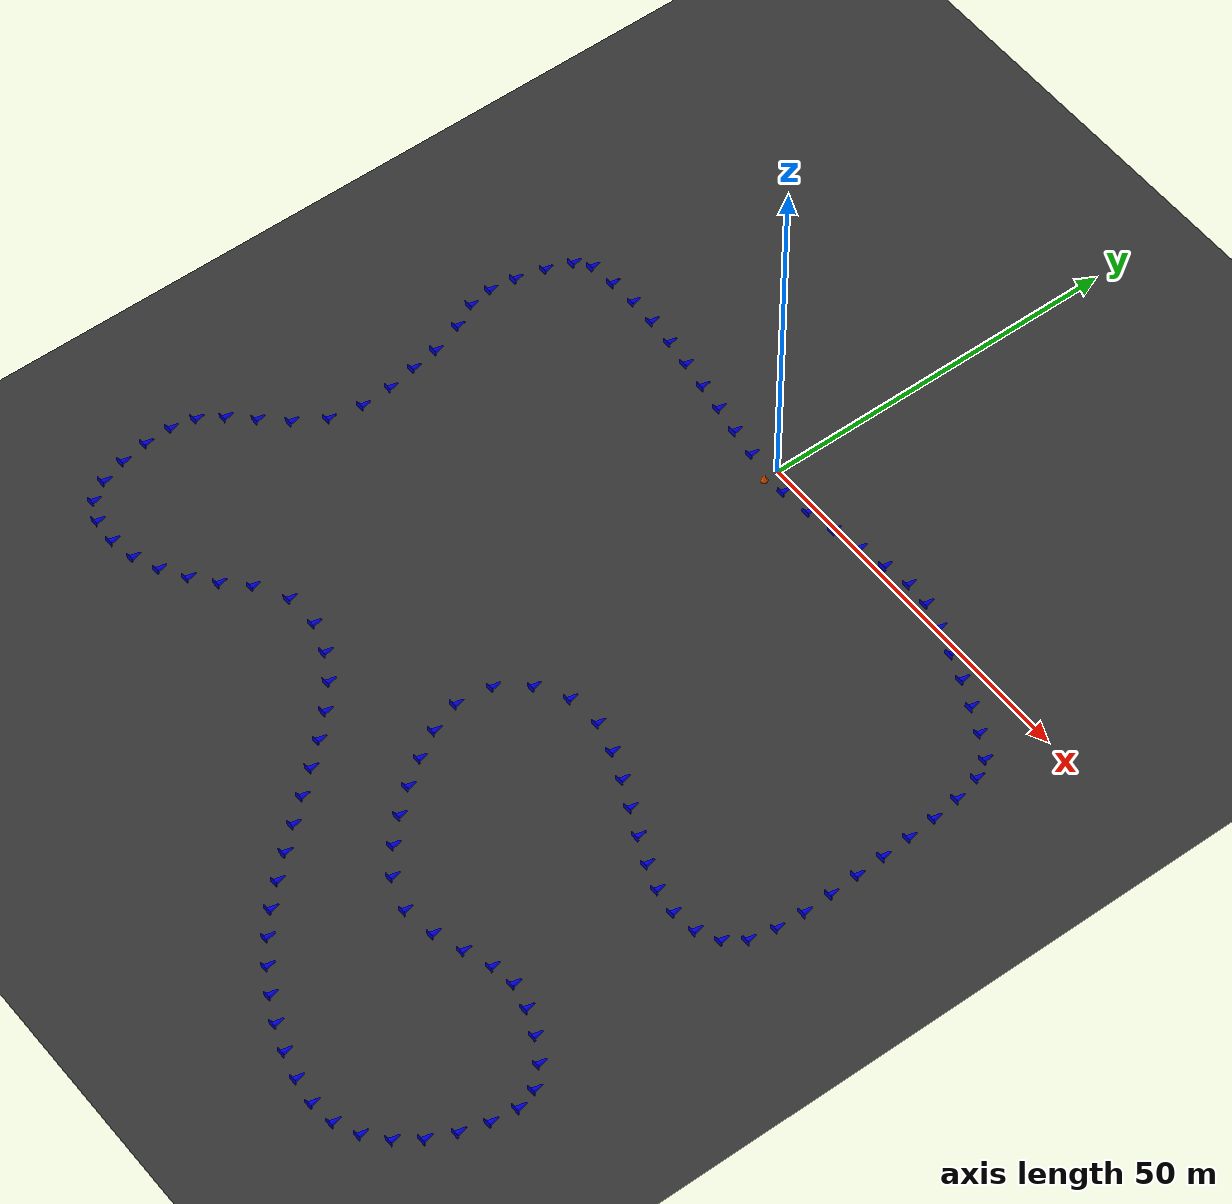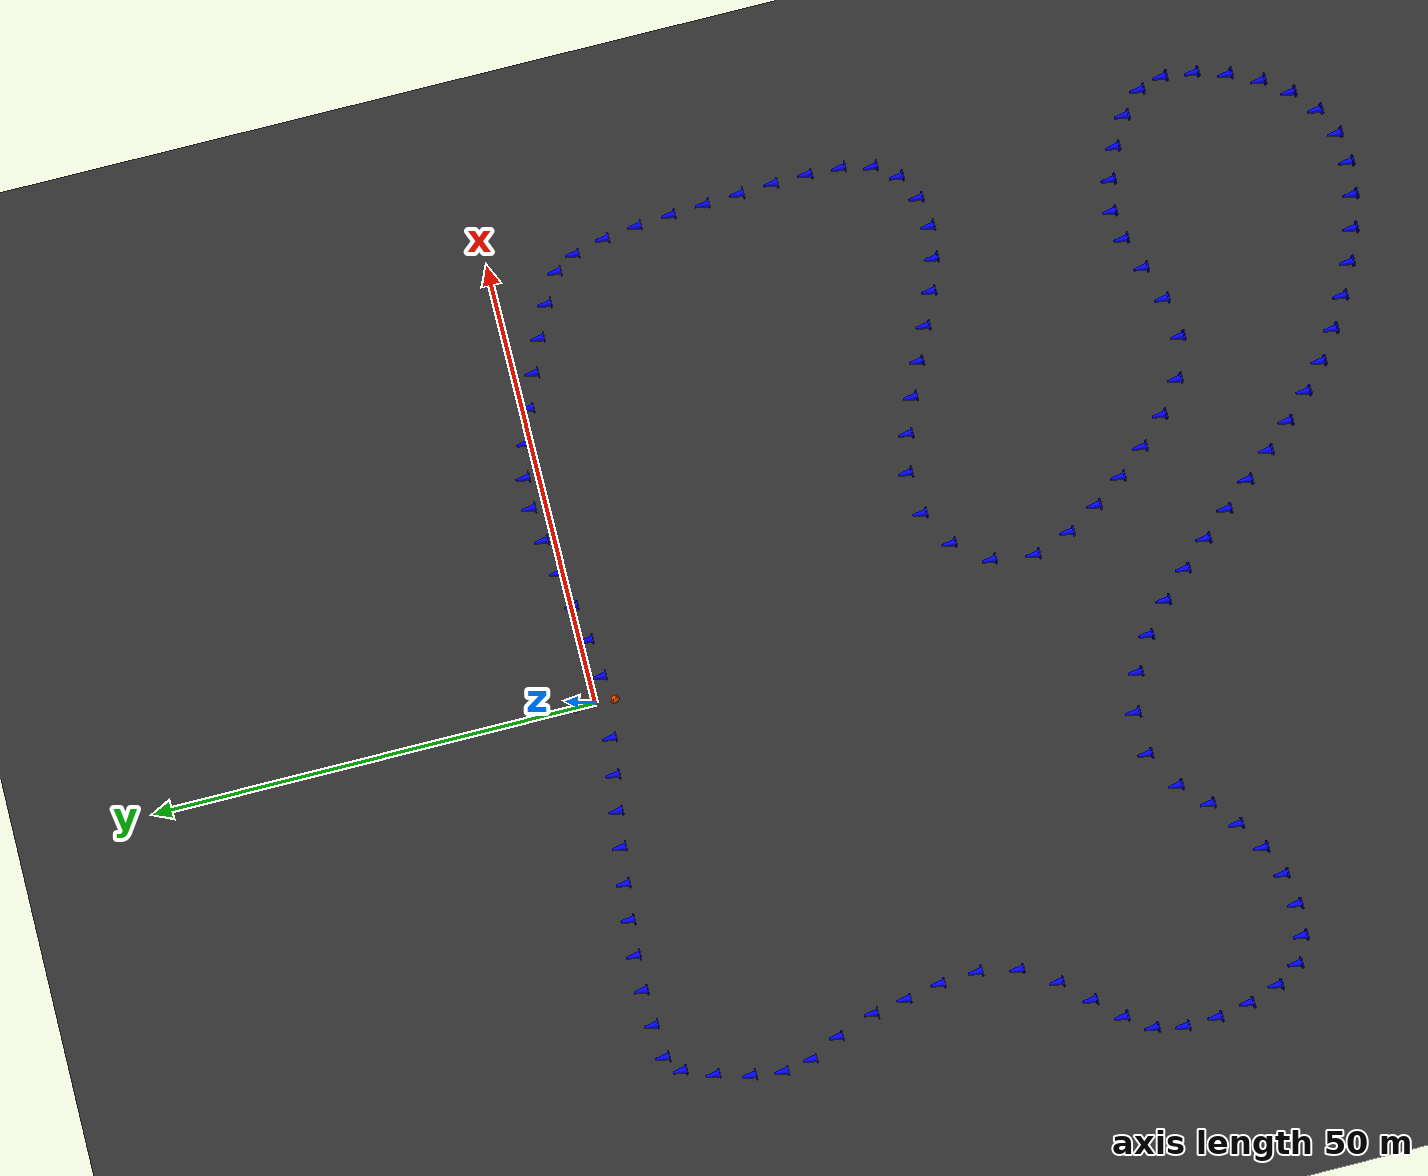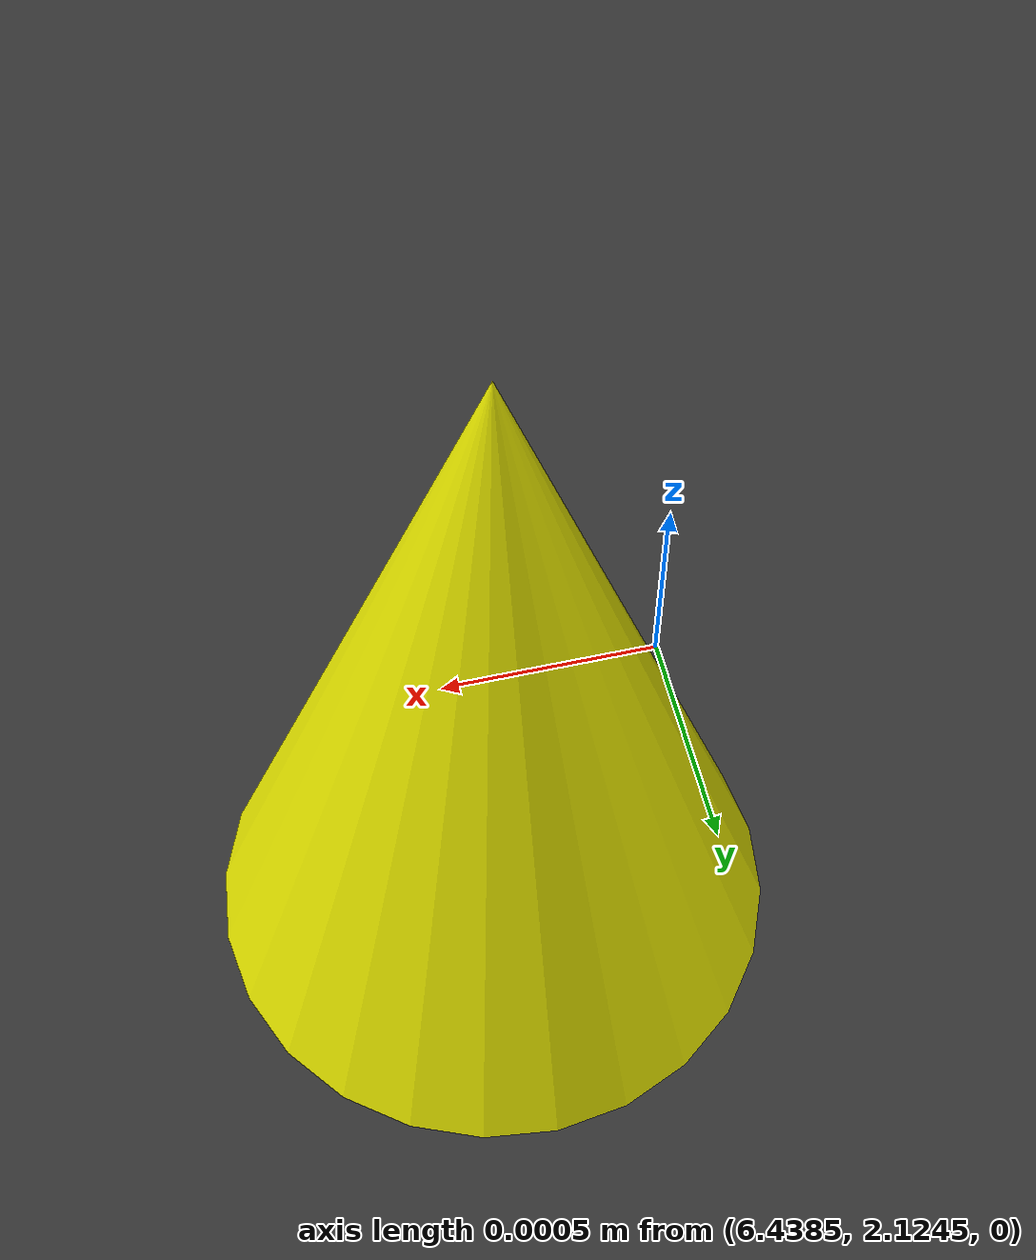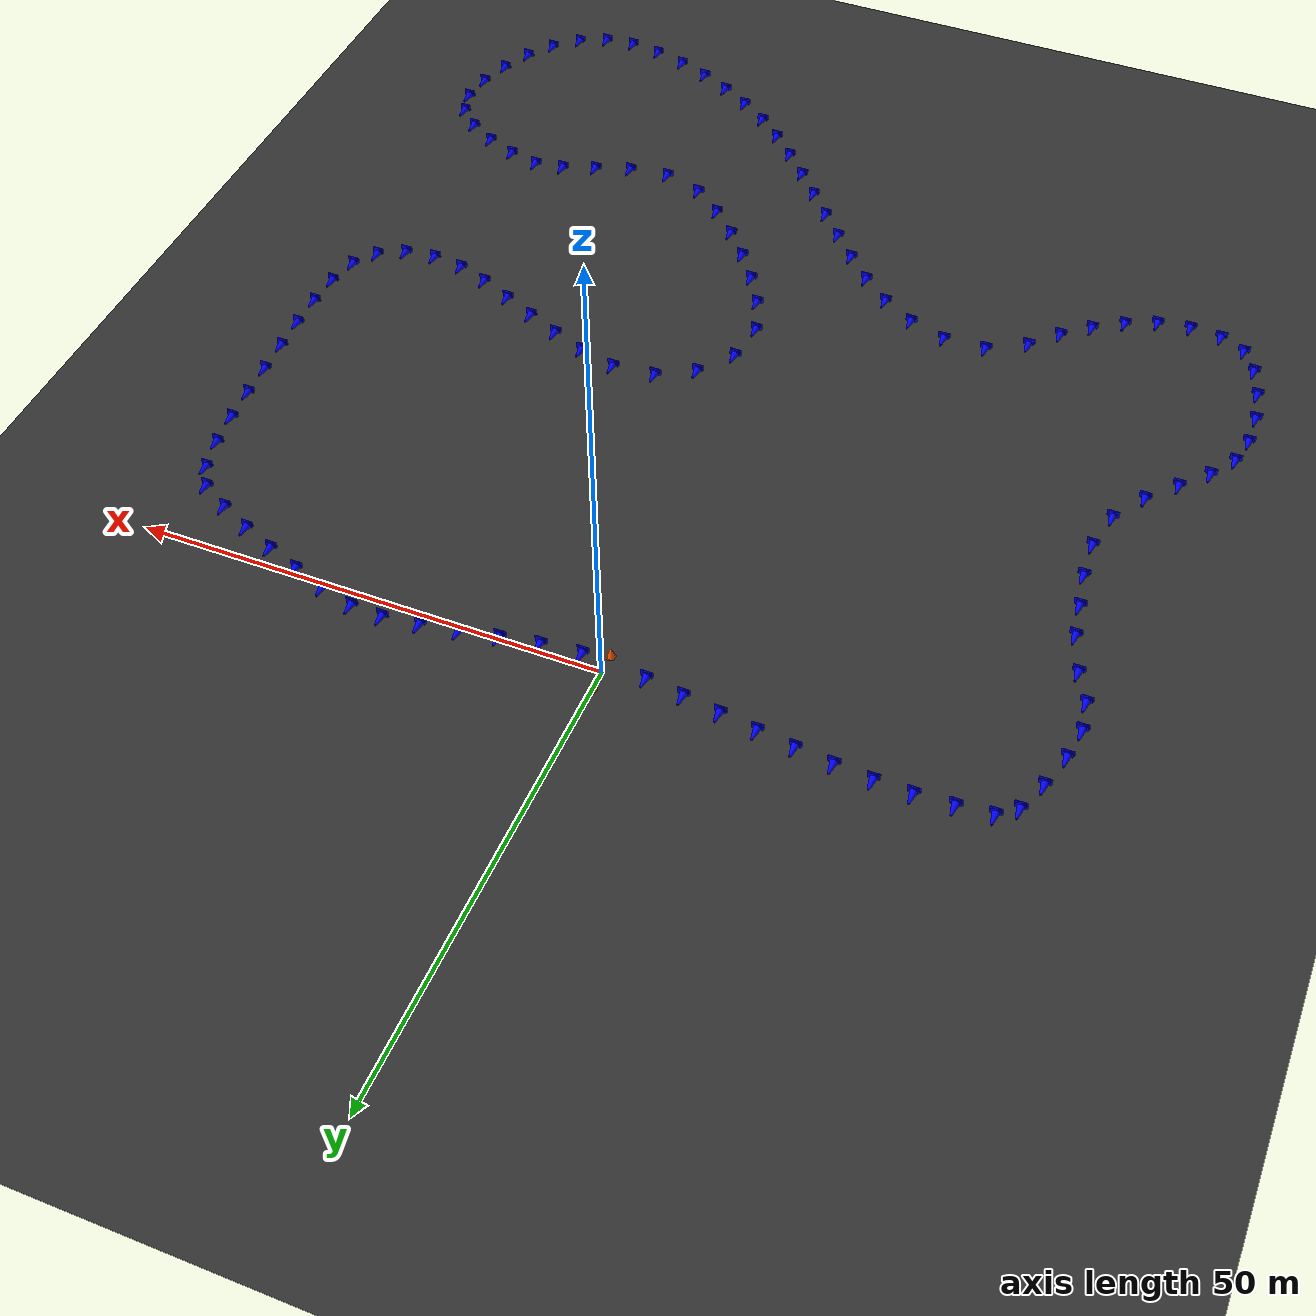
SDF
<sdf version="1.7">
 <world name="generated_world">
  <scene><sky><clouds><speed>12</speed></clouds></sky><grid>false</grid><shadows>1</shadows></scene>
  <physics type="ode">
   <max_step_size>0.001</max_step_size>
   <real_time_update_rate>1000</real_time_update_rate>
  </physics>
  <plugin filename="gz-sim-physics-system" name="gz::sim::systems::Physics"/>
  <plugin filename="gz-sim-user-commands-system" name="gz::sim::systems::UserCommands"/>
  <plugin filename="gz-sim-scene-broadcaster-system" name="gz::sim::systems::SceneBroadcaster"/>
  <plugin filename="gz-sim-contact-system" name="gz::sim::systems::Contact"/>
  <light name="sun" type="directional">
   <pose>0 0 10 0 0 0</pose>
   <diffuse>1 1 1 1</diffuse>
   <specular>0.2 0.2 0.2 1</specular>
   <direction>-0.5 0.2 -1</direction>
   <attenuation>
    <range>300</range>
    <constant>0.9</constant>
    <linear>0.01</linear>
    <quadratic>0.001</quadratic>
   </attenuation>
  </light>
  <model name="asphalt_ground">
   <static>1</static>
   <link name="link">
    <collision name="collision">
     <geometry><plane><normal>0 0 1</normal><size>300 300</size></plane></geometry>
     <surface><friction><ode><mu>100</mu><mu2>50</mu2></ode></friction></surface>
    </collision>
    <visual name="visual">
     <geometry><plane><normal>0 0 1</normal><size>300 300</size></plane></geometry>
     <material>
      <ambient>0.2 0.2 0.2 1</ambient>
      <diffuse>0.2 0.2 0.2 1</diffuse>
      <specular>0.1 0.1 0.1 1</specular>
     </material>
    </visual>
   </link>
  </model>
  <include><uri>model://cone_yellow</uri><name>cone_yellow_001</name><pose>2.761 1.724 0 0 0 0</pose></include>
  <include><uri>model://cone_yellow</uri><name>cone_yellow_002</name><pose>6.439 2.125 0 0 0 0</pose></include>
  <include><uri>model://cone_yellow</uri><name>cone_yellow_003</name><pose>10.350 2.819 0 0 0 0</pose></include>
  <include><uri>model://cone_yellow</uri><name>cone_yellow_004</name><pose>14.287 3.567 0 0 0 0</pose></include>
  <include><uri>model://cone_yellow</uri><name>cone_yellow_005</name><pose>18.274 4.277 0 0 0 0</pose></include>
  <include><uri>model://cone_yellow</uri><name>cone_yellow_006</name><pose>22.369 4.815 0 0 0 0</pose></include>
  <include><uri>model://cone_yellow</uri><name>cone_yellow_007</name><pose>26.805 4.576 0 0 0 0</pose></include>
  <include><uri>model://cone_yellow</uri><name>cone_yellow_008</name><pose>30.833 3.493 0 0 0 0</pose></include>
  <include><uri>model://cone_yellow</uri><name>cone_yellow_009</name><pose>34.731 2.151 0 0 0 0</pose></include>
  <include><uri>model://cone_yellow</uri><name>cone_yellow_010</name><pose>38.523 0.668 0 0 0 0</pose></include>
  <include>
   <uri>model://cone_yellow</uri>
   <name>cone_yellow_011</name>
   <pose>42.275 -0.953 0 0 0 0</pose>
  </include>
  <include>
   <uri>model://cone_yellow</uri>
   <name>cone_yellow_012</name>
   <pose>45.959 -2.729 0 0 0 0</pose>
  </include>
  <include>
   <uri>model://cone_yellow</uri>
   <name>cone_yellow_013</name>
   <pose>49.678 -4.934 0 0 0 0</pose>
  </include>
  <include>
   <uri>model://cone_yellow</uri>
   <name>cone_yellow_014</name>
   <pose>52.344 -9.016 0 0 0 0</pose>
  </include>
  <include>
   <uri>model://cone_yellow</uri>
   <name>cone_yellow_015</name>
   <pose>53.341 -13.198 0 0 0 0</pose>
  </include>
  <include>
   <uri>model://cone_yellow</uri>
   <name>cone_yellow_016</name>
   <pose>53.864 -17.280 0 0 0 0</pose>
  </include>
  <include>
   <uri>model://cone_yellow</uri>
   <name>cone_yellow_017</name>
   <pose>54.179 -21.344 0 0 0 0</pose>
  </include>
  <include>
   <uri>model://cone_yellow</uri>
   <name>cone_yellow_018</name>
   <pose>54.396 -25.365 0 0 0 0</pose>
  </include>
  <include>
   <uri>model://cone_yellow</uri>
   <name>cone_yellow_019</name>
   <pose>54.614 -29.320 0 0 0 0</pose>
  </include>
  <include>
   <uri>model://cone_yellow</uri>
   <name>cone_yellow_020</name>
   <pose>54.828 -33.353 0 0 0 0</pose>
  </include>
  <include>
   <uri>model://cone_yellow</uri>
   <name>cone_yellow_021</name>
   <pose>54.910 -37.448 0 0 0 0</pose>
  </include>
  <include>
   <uri>model://cone_yellow</uri>
   <name>cone_yellow_022</name>
   <pose>54.686 -41.629 0 0 0 0</pose>
  </include>
  <include>
   <uri>model://cone_yellow</uri>
   <name>cone_yellow_023</name>
   <pose>53.737 -45.947 0 0 0 0</pose>
  </include>
  <include>
   <uri>model://cone_yellow</uri>
   <name>cone_yellow_024</name>
   <pose>50.979 -49.879 0 0 0 0</pose>
  </include>
  <include>
   <uri>model://cone_yellow</uri>
   <name>cone_yellow_025</name>
   <pose>46.858 -52.119 0 0 0 0</pose>
  </include>
  <include>
   <uri>model://cone_yellow</uri>
   <name>cone_yellow_026</name>
   <pose>42.374 -52.721 0 0 0 0</pose>
  </include>
  <include>
   <uri>model://cone_yellow</uri>
   <name>cone_yellow_027</name>
   <pose>38.035 -52.152 0 0 0 0</pose>
  </include>
  <include>
   <uri>model://cone_yellow</uri>
   <name>cone_yellow_028</name>
   <pose>34.024 -50.797 0 0 0 0</pose>
  </include>
  <include>
   <uri>model://cone_yellow</uri>
   <name>cone_yellow_029</name>
   <pose>30.273 -49.147 0 0 0 0</pose>
  </include>
  <include>
   <uri>model://cone_yellow</uri>
   <name>cone_yellow_030</name>
   <pose>26.629 -47.468 0 0 0 0</pose>
  </include>
  <include>
   <uri>model://cone_yellow</uri>
   <name>cone_yellow_031</name>
   <pose>23.004 -45.858 0 0 0 0</pose>
  </include>
  <include>
   <uri>model://cone_yellow</uri>
   <name>cone_yellow_032</name>
   <pose>19.394 -44.447 0 0 0 0</pose>
  </include>
  <include>
   <uri>model://cone_yellow</uri>
   <name>cone_yellow_033</name>
   <pose>15.803 -43.485 0 0 0 0</pose>
  </include>
  <include>
   <uri>model://cone_yellow</uri>
   <name>cone_yellow_034</name>
   <pose>12.773 -43.779 0 0 0 0</pose>
  </include>
  <include>
   <uri>model://cone_yellow</uri>
   <name>cone_yellow_035</name>
   <pose>9.872 -45.436 0 0 0 0</pose>
  </include>
  <include>
   <uri>model://cone_yellow</uri>
   <name>cone_yellow_036</name>
   <pose>7.984 -47.963 0 0 0 0</pose>
  </include>
  <include>
   <uri>model://cone_yellow</uri>
   <name>cone_yellow_037</name>
   <pose>7.605 -50.944 0 0 0 0</pose>
  </include>
  <include>
   <uri>model://cone_yellow</uri>
   <name>cone_yellow_038</name>
   <pose>8.769 -54.115 0 0 0 0</pose>
  </include>
  <include>
   <uri>model://cone_yellow</uri>
   <name>cone_yellow_039</name>
   <pose>10.712 -57.421 0 0 0 0</pose>
  </include>
  <include>
   <uri>model://cone_yellow</uri>
   <name>cone_yellow_040</name>
   <pose>12.960 -60.584 0 0 0 0</pose>
  </include>
  <include>
   <uri>model://cone_yellow</uri>
   <name>cone_yellow_041</name>
   <pose>15.431 -63.578 0 0 0 0</pose>
  </include>
  <include>
   <uri>model://cone_yellow</uri>
   <name>cone_yellow_042</name>
   <pose>18.118 -66.328 0 0 0 0</pose>
  </include>
  <include>
   <uri>model://cone_yellow</uri>
   <name>cone_yellow_043</name>
   <pose>21.013 -68.595 0 0 0 0</pose>
  </include>
  <include>
   <uri>model://cone_yellow</uri>
   <name>cone_yellow_044</name>
   <pose>23.880 -69.572 0 0 0 0</pose>
  </include>
  <include>
   <uri>model://cone_yellow</uri>
   <name>cone_yellow_045</name>
   <pose>27.261 -69.081 0 0 0 0</pose>
  </include>
  <include>
   <uri>model://cone_yellow</uri>
   <name>cone_yellow_046</name>
   <pose>30.899 -67.814 0 0 0 0</pose>
  </include>
  <include>
   <uri>model://cone_yellow</uri>
   <name>cone_yellow_047</name>
   <pose>34.799 -66.420 0 0 0 0</pose>
  </include>
  <include>
   <uri>model://cone_yellow</uri>
   <name>cone_yellow_048</name>
   <pose>39.351 -65.763 0 0 0 0</pose>
  </include>
  <include>
   <uri>model://cone_yellow</uri>
   <name>cone_yellow_049</name>
   <pose>43.647 -66.705 0 0 0 0</pose>
  </include>
  <include>
   <uri>model://cone_yellow</uri>
   <name>cone_yellow_050</name>
   <pose>47.602 -68.286 0 0 0 0</pose>
  </include>
  <include>
   <uri>model://cone_yellow</uri>
   <name>cone_yellow_051</name>
   <pose>51.309 -70.516 0 0 0 0</pose>
  </include>
  <include>
   <uri>model://cone_yellow</uri>
   <name>cone_yellow_052</name>
   <pose>54.521 -73.753 0 0 0 0</pose>
  </include>
  <include>
   <uri>model://cone_yellow</uri>
   <name>cone_yellow_053</name>
   <pose>55.938 -78.452 0 0 0 0</pose>
  </include>
  <include>
   <uri>model://cone_yellow</uri>
   <name>cone_yellow_054</name>
   <pose>55.444 -82.851 0 0 0 0</pose>
  </include>
  <include>
   <uri>model://cone_yellow</uri>
   <name>cone_yellow_055</name>
   <pose>54.201 -86.924 0 0 0 0</pose>
  </include>
  <include>
   <uri>model://cone_yellow</uri>
   <name>cone_yellow_056</name>
   <pose>52.402 -90.791 0 0 0 0</pose>
  </include>
  <include>
   <uri>model://cone_yellow</uri>
   <name>cone_yellow_057</name>
   <pose>49.876 -94.334 0 0 0 0</pose>
  </include>
  <include>
   <uri>model://cone_yellow</uri>
   <name>cone_yellow_058</name>
   <pose>46.563 -97.263 0 0 0 0</pose>
  </include>
  <include>
   <uri>model://cone_yellow</uri>
   <name>cone_yellow_059</name>
   <pose>42.473 -99.201 0 0 0 0</pose>
  </include>
  <include>
   <uri>model://cone_yellow</uri>
   <name>cone_yellow_060</name>
   <pose>37.983 -99.754 0 0 0 0</pose>
  </include>
  <include>
   <uri>model://cone_yellow</uri>
   <name>cone_yellow_061</name>
   <pose>33.725 -99.189 0 0 0 0</pose>
  </include>
  <include>
   <uri>model://cone_yellow</uri>
   <name>cone_yellow_062</name>
   <pose>29.677 -98.102 0 0 0 0</pose>
  </include>
  <include>
   <uri>model://cone_yellow</uri>
   <name>cone_yellow_063</name>
   <pose>25.787 -96.620 0 0 0 0</pose>
  </include>
  <include>
   <uri>model://cone_yellow</uri>
   <name>cone_yellow_064</name>
   <pose>22.047 -94.798 0 0 0 0</pose>
  </include>
  <include>
   <uri>model://cone_yellow</uri>
   <name>cone_yellow_065</name>
   <pose>18.498 -92.692 0 0 0 0</pose>
  </include>
  <include>
   <uri>model://cone_yellow</uri>
   <name>cone_yellow_066</name>
   <pose>15.111 -90.304 0 0 0 0</pose>
  </include>
  <include>
   <uri>model://cone_yellow</uri>
   <name>cone_yellow_067</name>
   <pose>11.961 -87.564 0 0 0 0</pose>
  </include>
  <include>
   <uri>model://cone_yellow</uri>
   <name>cone_yellow_068</name>
   <pose>9.103 -84.621 0 0 0 0</pose>
  </include>
  <include>
   <uri>model://cone_yellow</uri>
   <name>cone_yellow_069</name>
   <pose>6.398 -81.587 0 0 0 0</pose>
  </include>
  <include>
   <uri>model://cone_yellow</uri>
   <name>cone_yellow_070</name>
   <pose>3.776 -78.517 0 0 0 0</pose>
  </include>
  <include>
   <uri>model://cone_yellow</uri>
   <name>cone_yellow_071</name>
   <pose>1.194 -75.443 0 0 0 0</pose>
  </include>
  <include>
   <uri>model://cone_yellow</uri>
   <name>cone_yellow_072</name>
   <pose>-1.387 -72.398 0 0 0 0</pose>
  </include>
  <include>
   <uri>model://cone_yellow</uri>
   <name>cone_yellow_073</name>
   <pose>-4.006 -69.421 0 0 0 0</pose>
  </include>
  <include>
   <uri>model://cone_yellow</uri>
   <name>cone_yellow_074</name>
   <pose>-6.714 -66.589 0 0 0 0</pose>
  </include>
  <include>
   <uri>model://cone_yellow</uri>
   <name>cone_yellow_075</name>
   <pose>-9.531 -64.153 0 0 0 0</pose>
  </include>
  <include>
   <uri>model://cone_yellow</uri>
   <name>cone_yellow_076</name>
   <pose>-12.688 -62.302 0 0 0 0</pose>
  </include>
  <include>
   <uri>model://cone_yellow</uri>
   <name>cone_yellow_077</name>
   <pose>-16.011 -61.192 0 0 0 0</pose>
  </include>
  <include>
   <uri>model://cone_yellow</uri>
   <name>cone_yellow_078</name>
   <pose>-19.196 -61.293 0 0 0 0</pose>
  </include>
  <include>
   <uri>model://cone_yellow</uri>
   <name>cone_yellow_079</name>
   <pose>-21.898 -62.850 0 0 0 0</pose>
  </include>
  <include>
   <uri>model://cone_yellow</uri>
   <name>cone_yellow_080</name>
   <pose>-24.663 -65.731 0 0 0 0</pose>
  </include>
  <include>
   <uri>model://cone_yellow</uri>
   <name>cone_yellow_081</name>
   <pose>-27.899 -68.431 0 0 0 0</pose>
  </include>
  <include>
   <uri>model://cone_yellow</uri>
   <name>cone_yellow_082</name>
   <pose>-31.465 -70.718 0 0 0 0</pose>
  </include>
  <include>
   <uri>model://cone_yellow</uri>
   <name>cone_yellow_083</name>
   <pose>-35.491 -72.433 0 0 0 0</pose>
  </include>
  <include>
   <uri>model://cone_yellow</uri>
   <name>cone_yellow_084</name>
   <pose>-39.817 -73.147 0 0 0 0</pose>
  </include>
  <include>
   <uri>model://cone_yellow</uri>
   <name>cone_yellow_085</name>
   <pose>-44.289 -72.785 0 0 0 0</pose>
  </include>
  <include>
   <uri>model://cone_yellow</uri>
   <name>cone_yellow_086</name>
   <pose>-48.599 -70.652 0 0 0 0</pose>
  </include>
  <include>
   <uri>model://cone_yellow</uri>
   <name>cone_yellow_087</name>
   <pose>-51.220 -66.706 0 0 0 0</pose>
  </include>
  <include>
   <uri>model://cone_yellow</uri>
   <name>cone_yellow_088</name>
   <pose>-52.530 -62.628 0 0 0 0</pose>
  </include>
  <include>
   <uri>model://cone_yellow</uri>
   <name>cone_yellow_089</name>
   <pose>-53.235 -58.449 0 0 0 0</pose>
  </include>
  <include>
   <uri>model://cone_yellow</uri>
   <name>cone_yellow_090</name>
   <pose>-53.338 -54.158 0 0 0 0</pose>
  </include>
  <include>
   <uri>model://cone_yellow</uri>
   <name>cone_yellow_091</name>
   <pose>-52.376 -49.683 0 0 0 0</pose>
  </include>
  <include>
   <uri>model://cone_yellow</uri>
   <name>cone_yellow_092</name>
   <pose>-49.942 -45.937 0 0 0 0</pose>
  </include>
  <include>
   <uri>model://cone_yellow</uri>
   <name>cone_yellow_093</name>
   <pose>-47.169 -42.886 0 0 0 0</pose>
  </include>
  <include>
   <uri>model://cone_yellow</uri>
   <name>cone_yellow_094</name>
   <pose>-44.568 -40.011 0 0 0 0</pose>
  </include>
  <include>
   <uri>model://cone_yellow</uri>
   <name>cone_yellow_095</name>
   <pose>-42.738 -37.104 0 0 0 0</pose>
  </include>
  <include>
   <uri>model://cone_yellow</uri>
   <name>cone_yellow_096</name>
   <pose>-42.119 -33.761 0 0 0 0</pose>
  </include>
  <include>
   <uri>model://cone_yellow</uri>
   <name>cone_yellow_097</name>
   <pose>-42.348 -30.090 0 0 0 0</pose>
  </include>
  <include>
   <uri>model://cone_yellow</uri>
   <name>cone_yellow_098</name>
   <pose>-43.029 -26.237 0 0 0 0</pose>
  </include>
  <include>
   <uri>model://cone_yellow</uri>
   <name>cone_yellow_099</name>
   <pose>-43.709 -22.180 0 0 0 0</pose>
  </include>
  <include>
   <uri>model://cone_yellow</uri>
   <name>cone_yellow_100</name>
   <pose>-44.814 -19.027 0 0 0 0</pose>
  </include>
  <include>
   <uri>model://cone_yellow</uri>
   <name>cone_yellow_101</name>
   <pose>-46.684 -15.226 0 0 0 0</pose>
  </include>
  <include>
   <uri>model://cone_yellow</uri>
   <name>cone_yellow_102</name>
   <pose>-47.418 -10.677 0 0 0 0</pose>
  </include>
  <include>
   <uri>model://cone_yellow</uri>
   <name>cone_yellow_103</name>
   <pose>-46.866 -6.413 0 0 0 0</pose>
  </include>
  <include>
   <uri>model://cone_yellow</uri>
   <name>cone_yellow_104</name>
   <pose>-45.762 -2.360 0 0 0 0</pose>
  </include>
  <include>
   <uri>model://cone_yellow</uri>
   <name>cone_yellow_105</name>
   <pose>-44.209 1.720 0 0 0 0</pose>
  </include>
  <include>
   <uri>model://cone_yellow</uri>
   <name>cone_yellow_106</name>
   <pose>-40.081 4.923 0 0 0 0</pose>
  </include>
  <include>
   <uri>model://cone_yellow</uri>
   <name>cone_yellow_107</name>
   <pose>-35.778 5.380 0 0 0 0</pose>
  </include>
  <include>
   <uri>model://cone_yellow</uri>
   <name>cone_yellow_108</name>
   <pose>-31.752 5.561 0 0 0 0</pose>
  </include>
  <include>
   <uri>model://cone_yellow</uri>
   <name>cone_yellow_109</name>
   <pose>-27.597 5.449 0 0 0 0</pose>
  </include>
  <include>
   <uri>model://cone_yellow</uri>
   <name>cone_yellow_110</name>
   <pose>-23.519 5.103 0 0 0 0</pose>
  </include>
  <include>
   <uri>model://cone_yellow</uri>
   <name>cone_yellow_111</name>
   <pose>-19.488 4.628 0 0 0 0</pose>
  </include>
  <include>
   <uri>model://cone_yellow</uri>
   <name>cone_yellow_112</name>
   <pose>-15.485 4.073 0 0 0 0</pose>
  </include>
  <include>
   <uri>model://cone_yellow</uri>
   <name>cone_yellow_113</name>
   <pose>-11.505 3.470 0 0 0 0</pose>
  </include>
  <include><uri>model://cone_yellow</uri><name>cone_yellow_114</name><pose>-7.556 2.847 0 0 0 0</pose></include>
  <include><uri>model://cone_yellow</uri><name>cone_yellow_115</name><pose>-3.569 2.233 0 0 0 0</pose></include>
  <include><uri>model://cone_blue</uri><name>cone_blue_001</name><pose>2.769 -1.776 0 0 0 0</pose></include>
  <include><uri>model://cone_blue</uri><name>cone_blue_002</name><pose>6.990 -1.332 0 0 0 0</pose></include>
  <include><uri>model://cone_blue</uri><name>cone_blue_003</name><pose>10.998 -0.620 0 0 0 0</pose></include>
  <include><uri>model://cone_blue</uri><name>cone_blue_004</name><pose>14.933 0.128 0 0 0 0</pose></include>
  <include><uri>model://cone_blue</uri><name>cone_blue_005</name><pose>18.837 0.823 0 0 0 0</pose></include>
  <include><uri>model://cone_blue</uri><name>cone_blue_006</name><pose>22.664 1.327 0 0 0 0</pose></include>
  <include><uri>model://cone_blue</uri><name>cone_blue_007</name><pose>26.099 1.148 0 0 0 0</pose></include>
  <include><uri>model://cone_blue</uri><name>cone_blue_008</name><pose>29.781 0.155 0 0 0 0</pose></include>
  <include><uri>model://cone_blue</uri><name>cone_blue_009</name><pose>33.516 -1.132 0 0 0 0</pose></include>
  <include><uri>model://cone_blue</uri><name>cone_blue_010</name><pose>37.191 -2.569 0 0 0 0</pose></include>
  <include><uri>model://cone_blue</uri><name>cone_blue_011</name><pose>40.828 -4.140 0 0 0 0</pose></include>
  <include><uri>model://cone_blue</uri><name>cone_blue_012</name><pose>44.353 -5.839 0 0 0 0</pose></include>
  <include><uri>model://cone_blue</uri><name>cone_blue_013</name><pose>47.583 -7.738 0 0 0 0</pose></include>
  <include><uri>model://cone_blue</uri><name>cone_blue_014</name><pose>49.031 -10.143 0 0 0 0</pose></include>
  <include><uri>model://cone_blue</uri><name>cone_blue_015</name><pose>49.889 -13.775 0 0 0 0</pose></include>
  <include><uri>model://cone_blue</uri><name>cone_blue_016</name><pose>50.381 -17.619 0 0 0 0</pose></include>
  <include><uri>model://cone_blue</uri><name>cone_blue_017</name><pose>50.686 -21.560 0 0 0 0</pose></include>
  <include><uri>model://cone_blue</uri><name>cone_blue_018</name><pose>50.901 -25.539 0 0 0 0</pose></include>
  <include><uri>model://cone_blue</uri><name>cone_blue_019</name><pose>51.120 -29.528 0 0 0 0</pose></include>
  <include><uri>model://cone_blue</uri><name>cone_blue_020</name><pose>51.331 -33.499 0 0 0 0</pose></include>
  <include><uri>model://cone_blue</uri><name>cone_blue_021</name><pose>51.410 -37.420 0 0 0 0</pose></include>
  <include><uri>model://cone_blue</uri><name>cone_blue_022</name><pose>51.208 -41.241 0 0 0 0</pose></include>
  <include><uri>model://cone_blue</uri><name>cone_blue_023</name><pose>50.460 -44.717 0 0 0 0</pose></include>
  <include><uri>model://cone_blue</uri><name>cone_blue_024</name><pose>48.687 -47.234 0 0 0 0</pose></include>
  <include><uri>model://cone_blue</uri><name>cone_blue_025</name><pose>45.837 -48.771 0 0 0 0</pose></include>
  <include><uri>model://cone_blue</uri><name>cone_blue_026</name><pose>42.422 -49.222 0 0 0 0</pose></include>
  <include><uri>model://cone_blue</uri><name>cone_blue_027</name><pose>38.858 -48.750 0 0 0 0</pose></include>
  <include><uri>model://cone_blue</uri><name>cone_blue_028</name><pose>35.355 -47.560 0 0 0 0</pose></include>
  <include><uri>model://cone_blue</uri><name>cone_blue_029</name><pose>31.730 -45.964 0 0 0 0</pose></include>
  <include><uri>model://cone_blue</uri><name>cone_blue_030</name><pose>28.086 -44.285 0 0 0 0</pose></include>
  <include><uri>model://cone_blue</uri><name>cone_blue_031</name><pose>24.372 -42.636 0 0 0 0</pose></include>
  <include><uri>model://cone_blue</uri><name>cone_blue_032</name><pose>20.541 -41.140 0 0 0 0</pose></include>
  <include><uri>model://cone_blue</uri><name>cone_blue_033</name><pose>16.336 -40.026 0 0 0 0</pose></include>
  <include><uri>model://cone_blue</uri><name>cone_blue_034</name><pose>11.598 -40.482 0 0 0 0</pose></include>
  <include><uri>model://cone_blue</uri><name>cone_blue_035</name><pose>7.592 -42.780 0 0 0 0</pose></include>
  <include><uri>model://cone_blue</uri><name>cone_blue_036</name><pose>4.756 -46.609 0 0 0 0</pose></include>
  <include><uri>model://cone_blue</uri><name>cone_blue_037</name><pose>4.141 -51.447 0 0 0 0</pose></include>
  <include><uri>model://cone_blue</uri><name>cone_blue_038</name><pose>5.651 -55.706 0 0 0 0</pose></include>
  <include><uri>model://cone_blue</uri><name>cone_blue_039</name><pose>7.784 -59.338 0 0 0 0</pose></include>
  <include><uri>model://cone_blue</uri><name>cone_blue_040</name><pose>10.181 -62.713 0 0 0 0</pose></include>
  <include><uri>model://cone_blue</uri><name>cone_blue_041</name><pose>12.818 -65.907 0 0 0 0</pose></include>
  <include><uri>model://cone_blue</uri><name>cone_blue_042</name><pose>15.748 -68.904 0 0 0 0</pose></include>
  <include><uri>model://cone_blue</uri><name>cone_blue_043</name><pose>19.167 -71.569 0 0 0 0</pose></include>
  <include><uri>model://cone_blue</uri><name>cone_blue_044</name><pose>23.712 -73.068 0 0 0 0</pose></include>
  <include><uri>model://cone_blue</uri><name>cone_blue_045</name><pose>28.212 -72.449 0 0 0 0</pose></include>
  <include><uri>model://cone_blue</uri><name>cone_blue_046</name><pose>32.151 -71.082 0 0 0 0</pose></include>
  <include><uri>model://cone_blue</uri><name>cone_blue_047</name><pose>35.805 -69.772 0 0 0 0</pose></include>
  <include><uri>model://cone_blue</uri><name>cone_blue_048</name><pose>39.115 -69.256 0 0 0 0</pose></include>
  <include><uri>model://cone_blue</uri><name>cone_blue_049</name><pose>42.592 -70.042 0 0 0 0</pose></include>
  <include><uri>model://cone_blue</uri><name>cone_blue_050</name><pose>46.065 -71.430 0 0 0 0</pose></include>
  <include><uri>model://cone_blue</uri><name>cone_blue_051</name><pose>49.220 -73.324 0 0 0 0</pose></include>
  <include><uri>model://cone_blue</uri><name>cone_blue_052</name><pose>51.619 -75.708 0 0 0 0</pose></include>
  <include><uri>model://cone_blue</uri><name>cone_blue_053</name><pose>52.439 -78.538 0 0 0 0</pose></include>
  <include><uri>model://cone_blue</uri><name>cone_blue_054</name><pose>52.028 -82.086 0 0 0 0</pose></include>
  <include><uri>model://cone_blue</uri><name>cone_blue_055</name><pose>50.933 -85.672 0 0 0 0</pose></include>
  <include><uri>model://cone_blue</uri><name>cone_blue_056</name><pose>49.349 -89.079 0 0 0 0</pose></include>
  <include><uri>model://cone_blue</uri><name>cone_blue_057</name><pose>47.264 -92.004 0 0 0 0</pose></include>
  <include><uri>model://cone_blue</uri><name>cone_blue_058</name><pose>44.602 -94.364 0 0 0 0</pose></include>
  <include><uri>model://cone_blue</uri><name>cone_blue_059</name><pose>41.494 -95.841 0 0 0 0</pose></include>
  <include><uri>model://cone_blue</uri><name>cone_blue_060</name><pose>38.099 -96.256 0 0 0 0</pose></include>
  <include><uri>model://cone_blue</uri><name>cone_blue_061</name><pose>34.437 -95.763 0 0 0 0</pose></include>
  <include><uri>model://cone_blue</uri><name>cone_blue_062</name><pose>30.765 -94.775 0 0 0 0</pose></include>
  <include><uri>model://cone_blue</uri><name>cone_blue_063</name><pose>27.183 -93.410 0 0 0 0</pose></include>
  <include><uri>model://cone_blue</uri><name>cone_blue_064</name><pose>23.711 -91.719 0 0 0 0</pose></include>
  <include><uri>model://cone_blue</uri><name>cone_blue_065</name><pose>20.402 -89.755 0 0 0 0</pose></include>
  <include><uri>model://cone_blue</uri><name>cone_blue_066</name><pose>17.235 -87.523 0 0 0 0</pose></include>
  <include><uri>model://cone_blue</uri><name>cone_blue_067</name><pose>14.393 -85.047 0 0 0 0</pose></include>
  <include><uri>model://cone_blue</uri><name>cone_blue_068</name><pose>11.676 -82.248 0 0 0 0</pose></include>
  <include><uri>model://cone_blue</uri><name>cone_blue_069</name><pose>9.041 -79.293 0 0 0 0</pose></include>
  <include><uri>model://cone_blue</uri><name>cone_blue_070</name><pose>6.452 -76.260 0 0 0 0</pose></include>
  <include><uri>model://cone_blue</uri><name>cone_blue_071</name><pose>3.873 -73.192 0 0 0 0</pose></include>
  <include><uri>model://cone_blue</uri><name>cone_blue_072</name><pose>1.269 -70.118 0 0 0 0</pose></include>
  <include><uri>model://cone_blue</uri><name>cone_blue_073</name><pose>-1.414 -67.068 0 0 0 0</pose></include>
  <include><uri>model://cone_blue</uri><name>cone_blue_074</name><pose>-4.268 -64.085 0 0 0 0</pose></include>
  <include><uri>model://cone_blue</uri><name>cone_blue_075</name><pose>-7.489 -61.311 0 0 0 0</pose></include>
  <include><uri>model://cone_blue</uri><name>cone_blue_076</name><pose>-11.187 -59.141 0 0 0 0</pose></include>
  <include><uri>model://cone_blue</uri><name>cone_blue_077</name><pose>-15.409 -57.745 0 0 0 0</pose></include>
  <include><uri>model://cone_blue</uri><name>cone_blue_078</name><pose>-20.133 -57.921 0 0 0 0</pose></include>
  <include><uri>model://cone_blue</uri><name>cone_blue_079</name><pose>-24.286 -60.292 0 0 0 0</pose></include>
  <include><uri>model://cone_blue</uri><name>cone_blue_080</name><pose>-27.066 -63.186 0 0 0 0</pose></include>
  <include><uri>model://cone_blue</uri><name>cone_blue_081</name><pose>-29.975 -65.614 0 0 0 0</pose></include>
  <include><uri>model://cone_blue</uri><name>cone_blue_082</name><pose>-33.142 -67.645 0 0 0 0</pose></include>
  <include><uri>model://cone_blue</uri><name>cone_blue_083</name><pose>-36.472 -69.074 0 0 0 0</pose></include>
  <include><uri>model://cone_blue</uri><name>cone_blue_084</name><pose>-39.999 -69.652 0 0 0 0</pose></include>
  <include><uri>model://cone_blue</uri><name>cone_blue_085</name><pose>-43.482 -69.379 0 0 0 0</pose></include>
  <include><uri>model://cone_blue</uri><name>cone_blue_086</name><pose>-46.278 -68.031 0 0 0 0</pose></include>
  <include><uri>model://cone_blue</uri><name>cone_blue_087</name><pose>-47.998 -65.338 0 0 0 0</pose></include>
  <include><uri>model://cone_blue</uri><name>cone_blue_088</name><pose>-49.125 -61.818 0 0 0 0</pose></include>
  <include><uri>model://cone_blue</uri><name>cone_blue_089</name><pose>-49.753 -58.097 0 0 0 0</pose></include>
  <include><uri>model://cone_blue</uri><name>cone_blue_090</name><pose>-49.845 -54.379 0 0 0 0</pose></include>
  <include><uri>model://cone_blue</uri><name>cone_blue_091</name><pose>-49.176 -51.099 0 0 0 0</pose></include>
  <include><uri>model://cone_blue</uri><name>cone_blue_092</name><pose>-47.247 -48.170 0 0 0 0</pose></include>
  <include><uri>model://cone_blue</uri><name>cone_blue_093</name><pose>-44.631 -45.296 0 0 0 0</pose></include>
  <include><uri>model://cone_blue</uri><name>cone_blue_094</name><pose>-41.856 -42.224 0 0 0 0</pose></include>
  <include><uri>model://cone_blue</uri><name>cone_blue_095</name><pose>-39.475 -38.369 0 0 0 0</pose></include>
  <include><uri>model://cone_blue</uri><name>cone_blue_096</name><pose>-38.621 -33.903 0 0 0 0</pose></include>
  <include><uri>model://cone_blue</uri><name>cone_blue_097</name><pose>-38.882 -29.601 0 0 0 0</pose></include>
  <include><uri>model://cone_blue</uri><name>cone_blue_098</name><pose>-39.592 -25.577 0 0 0 0</pose></include>
  <include><uri>model://cone_blue</uri><name>cone_blue_099</name><pose>-40.237 -21.744 0 0 0 0</pose></include>
  <include><uri>model://cone_blue</uri><name>cone_blue_100</name><pose>-41.726 -17.380 0 0 0 0</pose></include>
  <include><uri>model://cone_blue</uri><name>cone_blue_101</name><pose>-43.389 -14.046 0 0 0 0</pose></include>
  <include><uri>model://cone_blue</uri><name>cone_blue_102</name><pose>-43.918 -10.720 0 0 0 0</pose></include>
  <include><uri>model://cone_blue</uri><name>cone_blue_103</name><pose>-43.454 -7.192 0 0 0 0</pose></include>
  <include><uri>model://cone_blue</uri><name>cone_blue_104</name><pose>-42.408 -3.361 0 0 0 0</pose></include>
  <include><uri>model://cone_blue</uri><name>cone_blue_105</name><pose>-41.137 0.042 0 0 0 0</pose></include>
  <include><uri>model://cone_blue</uri><name>cone_blue_106</name><pose>-39.255 1.522 0 0 0 0</pose></include>
  <include><uri>model://cone_blue</uri><name>cone_blue_107</name><pose>-35.610 1.884 0 0 0 0</pose></include>
  <include><uri>model://cone_blue</uri><name>cone_blue_108</name><pose>-31.688 2.062 0 0 0 0</pose></include>
  <include><uri>model://cone_blue</uri><name>cone_blue_109</name><pose>-27.814 1.956 0 0 0 0</pose></include>
  <include><uri>model://cone_blue</uri><name>cone_blue_110</name><pose>-23.881 1.622 0 0 0 0</pose></include>
  <include><uri>model://cone_blue</uri><name>cone_blue_111</name><pose>-19.938 1.157 0 0 0 0</pose></include>
  <include><uri>model://cone_blue</uri><name>cone_blue_112</name><pose>-15.991 0.610 0 0 0 0</pose></include>
  <include><uri>model://cone_blue</uri><name>cone_blue_113</name><pose>-12.044 0.011 0 0 0 0</pose></include>
  <include><uri>model://cone_blue</uri><name>cone_blue_114</name><pose>-8.103 -0.610 0 0 0 0</pose></include>
  <include><uri>model://cone_blue</uri><name>cone_blue_115</name><pose>-4.075 -1.231 0 0 0 0</pose></include>
  <include>
   <uri>model://cone_orange_big</uri>
   <name>cone_orange_big_001</name>
   <pose>0.000 -2.171 0 0 0 0</pose>
  </include>
  <include>
   <uri>model://cone_orange_big</uri>
   <name>cone_orange_big_002</name>
   <pose>0.000 2.171 0 0 0 0</pose>
  </include>
 </world>
</sdf>

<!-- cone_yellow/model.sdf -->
<sdf version="1.6">
  <model name="cone_yellow">
    <static>1</static>
    <link name="link">

      <visual name="visual">
        <pose>0 0 0 0 0 0</pose>
        <geometry>
          <mesh>
            <uri>model://cone_yellow/meshes/cone.stl</uri>
            <scale>0.005 0.005 0.005</scale>
          </mesh>
        </geometry>
        <material>
          <ambient>1.0 1.0 0.0 1</ambient>
          <diffuse>1.0 1.0 0.0 1</diffuse>
        </material>
      </visual>

      <collision name="collision">
        <pose>0 0 0.15 0 0 0</pose>
        <geometry>
          <cylinder>
            <radius>0.1</radius>
            <length>0.3</length>
          </cylinder>
        </geometry>
        <surface>
          <friction>
            <ode>
              <mu>0.9</mu> <mu2>0.9</mu2> </ode>
          </friction>
        </surface>
      </collision>

      <inertial>
        <pose>0 0 0.05 0 0 0</pose>
        <mass>1</mass>
        <inertia>
          <ixx>0.01</ixx> <iyy>0.01</iyy> <izz>0.005</izz>
          <ixy>0.0</ixy> <ixz>0.0</ixz> <iyz>0.0</iyz>
        </inertia>
      </inertial>

    </link>
  </model>
</sdf>

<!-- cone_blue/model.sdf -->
<sdf version="1.6">
  <model name="cone_blue">
    <static>1</static>
    <link name="link">

      <inertial>
        <pose>0 0 0.05 0 0 0</pose> <mass>1</mass>
        <inertia>
          <ixx>0.01</ixx> <iyy>0.01</iyy> <izz>0.005</izz>
          <ixy>0.0</ixy> <ixz>0.0</ixz> <iyz>0.0</iyz>
        </inertia>
      </inertial>

      <collision name="collision">
        <pose>0 0 0.15 0 0 0</pose>
        <geometry>
          <cylinder>
            <radius>0.1</radius>
            <length>0.3</length>
          </cylinder>
        </geometry>
      </collision>

      <visual name="visual">
        <pose>0 0 0 0 0 0</pose>
        <geometry>
          <mesh>
            <uri>model://cone_blue/meshes/cone.stl</uri>
            <scale>0.005 0.005 0.005</scale>
          </mesh>
        </geometry>
        <material>
          <ambient>0.0 0.0 1.0 1</ambient>
          <diffuse>0.0 0.0 1.0 1</diffuse>
        </material>
      </visual>

    </link>
  </model>
</sdf>

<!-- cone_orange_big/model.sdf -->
<sdf version="1.6">
  <model name="cone_orange_big">
    <static>1</static>
    <link name="link">
      <visual name="visual">
        <geometry>
          <mesh>
            <uri>model://cone_orange_big/meshes/cone.stl</uri>
            <scale>0.0112 0.0112 0.0112</scale>
          </mesh>
        </geometry>
        <material>
          <ambient>1.0 0.35 0.0 1</ambient>
	  <diffuse>1.0 0.35 0.0 1</diffuse>
        </material>
      </visual>
      <collision name="collision">
        <geometry>
          <mesh>
            <uri>model://cone_orange_big/meshes/cone.stl</uri>
            <scale>0.0112 0.0112 0.0112</scale>
          </mesh>
        </geometry>
      </collision>
      <inertial>
        <mass>0.1</mass>
        <inertia>
          <ixx>0.0001</ixx>
          <iyy>0.0001</iyy>
          <izz>0.0001</izz>
          <ixy>0.0</ixy>
          <ixz>0.0</ixz>
          <iyz>0.0</iyz>
        </inertia>
      </inertial>
    </link>
  </model>
</sdf>
